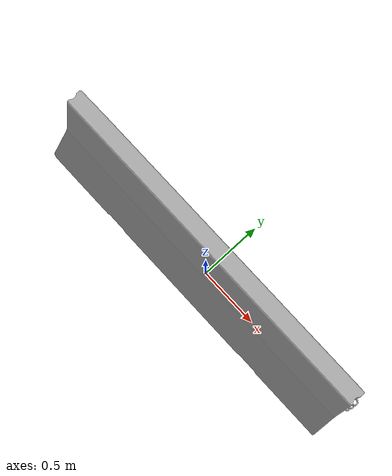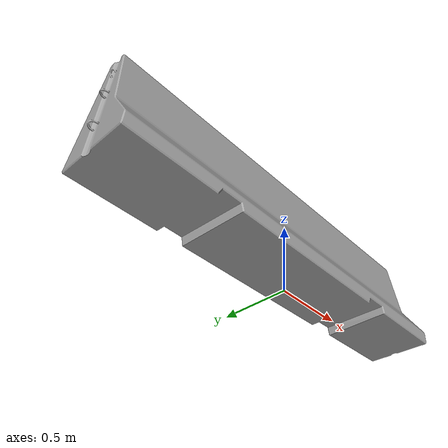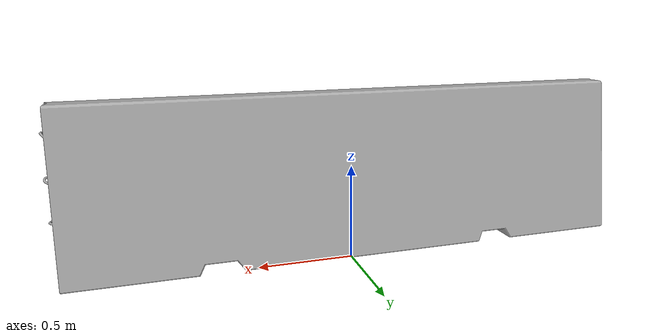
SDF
<?xml version='1.0'?>
<sdf version="1.5">
  <model name="road_barricade">
    <static>false</static>

    <link name="ball">
      <pose>0 0 0.1 0 0 0</pose>

      <collision name="collision">
        <geometry>
            <mesh><uri>model://road_barricade/road_barricade.dae</uri></mesh>
        </geometry>
        <surface>
            <bounce>
              <restitution_coefficient>0.2</restitution_coefficient>
              <threshold>100</threshold>
            </bounce>
            <contact>
              <ode>
                <max_vel>10</max_vel>
              </ode>
            </contact>
          </surface>
      </collision>

      <visual name="visual">
        <geometry>
            <mesh><uri>model://road_barricade/road_barricade.dae</uri></mesh>
        </geometry>
      </visual>

      <inertial>
        <mass>200</mass>
        <inertia>
          <ixx>0.075021</ixx>
          <ixy>0.000003</ixy>
          <ixz>-0.000029</ixz>
          <iyy>0.895130</iyy>
          <iyz>-0.006310</iyz>
          <izz>0.847779</izz>
        </inertia>
      </inertial>

    </link>
  </model>
</sdf>
